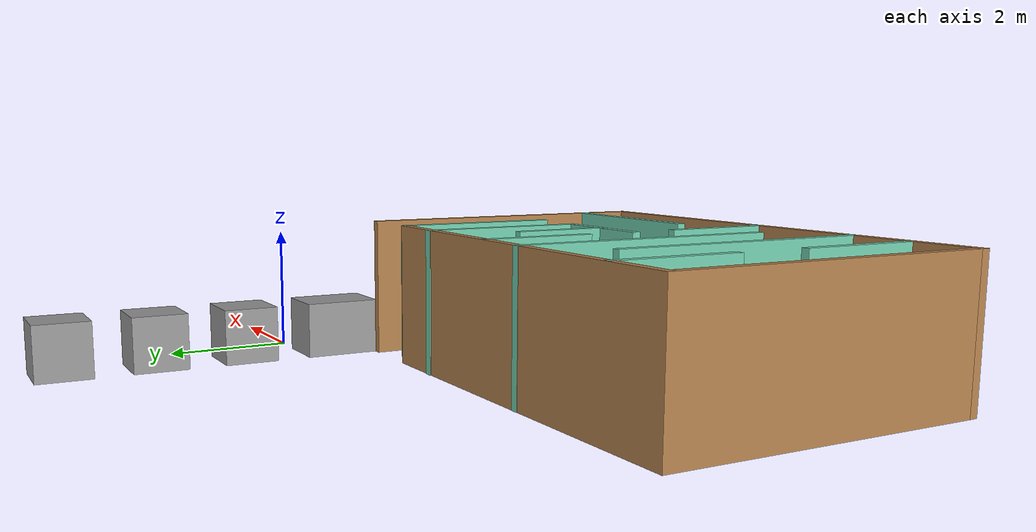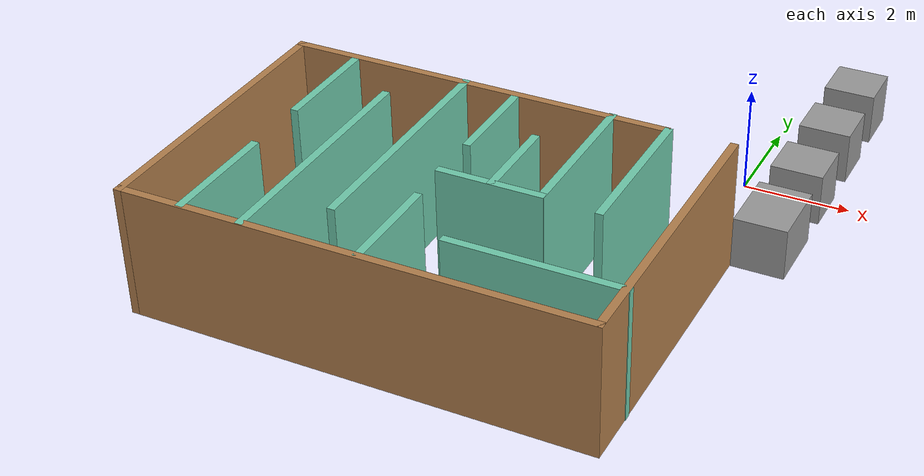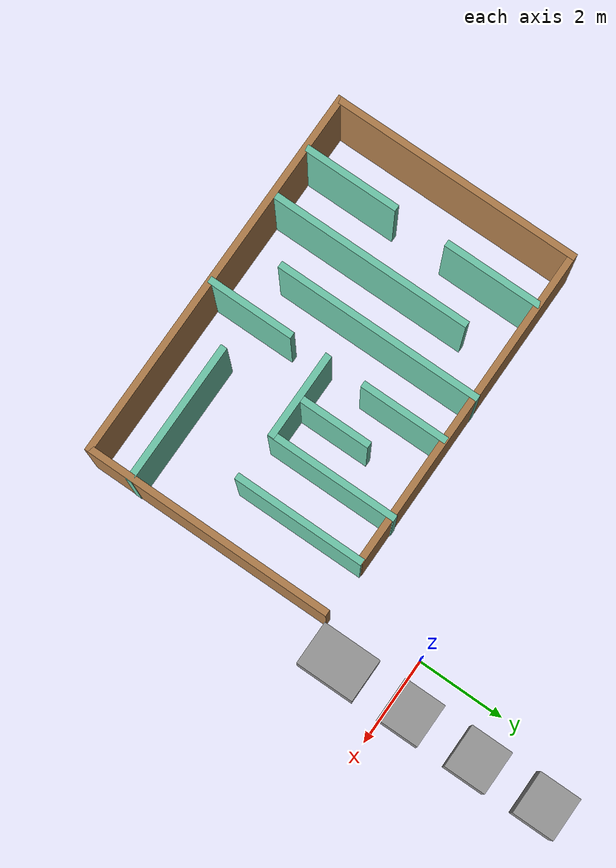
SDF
<?xml version='1.0'?>
<sdf version='1.6'>
  <model name='room_with_doors'>
    <link name='link_0'>
      <inertial>
        <mass>1.3523</mass>
        <inertia>
          <ixx>0.318777</ixx>
          <ixy>0</ixy>
          <ixz>0</ixz>
          <iyy>0.225384</iyy>
          <iyz>0</iyz>
          <izz>0.318777</izz>
        </inertia>
        <pose frame=''>0 0 0 0 -0 0</pose>
      </inertial>
      <pose frame=''>0.975123 -1.33272 0.1 0 -0 0</pose>
      <visual name='visual'>
        <pose frame=''>0 0 0 0 -0 0</pose>
        <geometry>
          <box>
            <size>1 1.35231 1</size>
          </box>
        </geometry>
        <material>
          <lighting>1</lighting>
          <script>
            <uri>file://media/materials/scripts/gazebo.material</uri>
            <name>Gazebo/Grey</name>
          </script>
        </material>
        <transparency>0</transparency>
        <cast_shadows>1</cast_shadows>
      </visual>
      <collision name='collision'>
        <laser_retro>0</laser_retro>
        <max_contacts>10</max_contacts>
        <pose frame=''>0 0 0 0 -0 0</pose>
        <geometry>
          <box>
            <size>1 1.35231 1</size>
          </box>
        </geometry>
        <surface>
          <friction>
            <ode>
              <mu>1</mu>
              <mu2>1</mu2>
              <fdir1>0 0 0</fdir1>
              <slip1>0</slip1>
              <slip2>0</slip2>
            </ode>
            <torsional>
              <coefficient>1</coefficient>
              <patch_radius>0</patch_radius>
              <surface_radius>0</surface_radius>
              <use_patch_radius>1</use_patch_radius>
              <ode>
                <slip>0</slip>
              </ode>
            </torsional>
          </friction>
          <bounce>
            <restitution_coefficient>0</restitution_coefficient>
            <threshold>1e+06</threshold>
          </bounce>
          <contact>
            <collide_without_contact>0</collide_without_contact>
            <collide_without_contact_bitmask>1</collide_without_contact_bitmask>
            <collide_bitmask>1</collide_bitmask>
            <ode>
              <soft_cfm>0</soft_cfm>
              <soft_erp>0.2</soft_erp>
              <kp>1e+13</kp>
              <kd>1</kd>
              <max_vel>0.01</max_vel>
              <min_depth>0</min_depth>
            </ode>
            <bullet>
              <split_impulse>1</split_impulse>
              <split_impulse_penetration_threshold>-0.01</split_impulse_penetration_threshold>
              <soft_cfm>0</soft_cfm>
              <soft_erp>0.2</soft_erp>
              <kp>1e+13</kp>
              <kd>1</kd>
            </bullet>
          </contact>
        </surface>
      </collision>
    </link>
    <link name='link_0_clone'>
      <inertial>
        <mass>0.973671</mass>
        <inertia>
          <ixx>0.158063</ixx>
          <ixy>0</ixy>
          <ixz>0</ixz>
          <iyy>0.162278</iyy>
          <iyz>0</iyz>
          <izz>0.158063</izz>
        </inertia>
        <pose frame=''>0 0 0 0 -0 0</pose>
      </inertial>
      <pose frame=''>0.974787 0.433874 0.1 0 -0 0</pose>
      <visual name='visual'>
        <pose frame=''>0 0 0 0 -0 0</pose>
        <geometry>
          <box>
            <size>1 0.973678 1</size>
          </box>
        </geometry>
        <material>
          <lighting>1</lighting>
          <script>
            <uri>file://media/materials/scripts/gazebo.material</uri>
            <name>Gazebo/Grey</name>
          </script>
          <shader type='pixel'/>
        </material>
        <transparency>0</transparency>
        <cast_shadows>1</cast_shadows>
      </visual>
      <collision name='collision'>
        <laser_retro>0</laser_retro>
        <max_contacts>10</max_contacts>
        <pose frame=''>0 0 0 0 -0 0</pose>
        <geometry>
          <box>
            <size>1 0.973678 1</size>
          </box>
        </geometry>
        <surface>
          <friction>
            <ode>
              <mu>1</mu>
              <mu2>1</mu2>
              <fdir1>0 0 0</fdir1>
              <slip1>0</slip1>
              <slip2>0</slip2>
            </ode>
            <torsional>
              <coefficient>1</coefficient>
              <patch_radius>0</patch_radius>
              <surface_radius>0</surface_radius>
              <use_patch_radius>1</use_patch_radius>
              <ode>
                <slip>0</slip>
              </ode>
            </torsional>
          </friction>
          <bounce>
            <restitution_coefficient>0</restitution_coefficient>
            <threshold>1e+06</threshold>
          </bounce>
          <contact>
            <collide_without_contact>0</collide_without_contact>
            <collide_without_contact_bitmask>1</collide_without_contact_bitmask>
            <collide_bitmask>1</collide_bitmask>
            <ode>
              <soft_cfm>0</soft_cfm>
              <soft_erp>0.2</soft_erp>
              <kp>1e+13</kp>
              <kd>1</kd>
              <max_vel>0.01</max_vel>
              <min_depth>0</min_depth>
            </ode>
            <bullet>
              <split_impulse>1</split_impulse>
              <split_impulse_penetration_threshold>-0.01</split_impulse_penetration_threshold>
              <soft_cfm>0</soft_cfm>
              <soft_erp>0.2</soft_erp>
              <kp>1e+13</kp>
              <kd>1</kd>
            </bullet>
          </contact>
        </surface>
      </collision>
    </link>
    <link name='link_0_clone_clone'>
      <inertial>
        <mass>0.973671</mass>
        <inertia>
          <ixx>0.158063</ixx>
          <ixy>0</ixy>
          <ixz>0</ixz>
          <iyy>0.162278</iyy>
          <iyz>0</iyz>
          <izz>0.158063</izz>
        </inertia>
        <pose frame=''>0 0 0 0 -0 0</pose>
      </inertial>
      <pose frame=''>0.982957 2.05971 0.1 0 -0 0</pose>
      <visual name='visual'>
        <pose frame=''>0 0 0 0 -0 0</pose>
        <geometry>
          <box>
            <size>1 0.973678 1</size>
          </box>
        </geometry>
        <material>
          <lighting>1</lighting>
          <script>
            <uri>file://media/materials/scripts/gazebo.material</uri>
            <name>Gazebo/Grey</name>
          </script>
          <shader type='pixel'/>
        </material>
        <transparency>0</transparency>
        <cast_shadows>1</cast_shadows>
      </visual>
      <collision name='collision'>
        <laser_retro>0</laser_retro>
        <max_contacts>10</max_contacts>
        <pose frame=''>0 0 0 0 -0 0</pose>
        <geometry>
          <box>
            <size>1 0.973678 1</size>
          </box>
        </geometry>
        <surface>
          <friction>
            <ode>
              <mu>1</mu>
              <mu2>1</mu2>
              <fdir1>0 0 0</fdir1>
              <slip1>0</slip1>
              <slip2>0</slip2>
            </ode>
            <torsional>
              <coefficient>1</coefficient>
              <patch_radius>0</patch_radius>
              <surface_radius>0</surface_radius>
              <use_patch_radius>1</use_patch_radius>
              <ode>
                <slip>0</slip>
              </ode>
            </torsional>
          </friction>
          <bounce>
            <restitution_coefficient>0</restitution_coefficient>
            <threshold>1e+06</threshold>
          </bounce>
          <contact>
            <collide_without_contact>0</collide_without_contact>
            <collide_without_contact_bitmask>1</collide_without_contact_bitmask>
            <collide_bitmask>1</collide_bitmask>
            <ode>
              <soft_cfm>0</soft_cfm>
              <soft_erp>0.2</soft_erp>
              <kp>1e+13</kp>
              <kd>1</kd>
              <max_vel>0.01</max_vel>
              <min_depth>0</min_depth>
            </ode>
            <bullet>
              <split_impulse>1</split_impulse>
              <split_impulse_penetration_threshold>-0.01</split_impulse_penetration_threshold>
              <soft_cfm>0</soft_cfm>
              <soft_erp>0.2</soft_erp>
              <kp>1e+13</kp>
              <kd>1</kd>
            </bullet>
          </contact>
        </surface>
      </collision>
    </link>
    <link name='link_0_clone_clone_clone'>
      <inertial>
        <mass>0.973671</mass>
        <inertia>
          <ixx>0.158063</ixx>
          <ixy>0</ixy>
          <ixz>0</ixz>
          <iyy>0.162278</iyy>
          <iyz>0</iyz>
          <izz>0.158063</izz>
        </inertia>
        <pose frame=''>0 0 0 0 -0 0</pose>
      </inertial>
      <pose frame=''>0.966793 3.68731 0.1 0 -0 0</pose>
      <visual name='visual'>
        <pose frame=''>0 0 0 0 -0 0</pose>
        <geometry>
          <box>
            <size>1 0.973678 1</size>
          </box>
        </geometry>
        <material>
          <lighting>1</lighting>
          <script>
            <uri>file://media/materials/scripts/gazebo.material</uri>
            <name>Gazebo/Grey</name>
          </script>
          <shader type='pixel'/>
        </material>
        <transparency>0</transparency>
        <cast_shadows>1</cast_shadows>
      </visual>
      <collision name='collision'>
        <laser_retro>0</laser_retro>
        <max_contacts>10</max_contacts>
        <pose frame=''>0 0 0 0 -0 0</pose>
        <geometry>
          <box>
            <size>1 0.973678 1</size>
          </box>
        </geometry>
        <surface>
          <friction>
            <ode>
              <mu>1</mu>
              <mu2>1</mu2>
              <fdir1>0 0 0</fdir1>
              <slip1>0</slip1>
              <slip2>0</slip2>
            </ode>
            <torsional>
              <coefficient>1</coefficient>
              <patch_radius>0</patch_radius>
              <surface_radius>0</surface_radius>
              <use_patch_radius>1</use_patch_radius>
              <ode>
                <slip>0</slip>
              </ode>
            </torsional>
          </friction>
          <bounce>
            <restitution_coefficient>0</restitution_coefficient>
            <threshold>1e+06</threshold>
          </bounce>
          <contact>
            <collide_without_contact>0</collide_without_contact>
            <collide_without_contact_bitmask>1</collide_without_contact_bitmask>
            <collide_bitmask>1</collide_bitmask>
            <ode>
              <soft_cfm>0</soft_cfm>
              <soft_erp>0.2</soft_erp>
              <kp>1e+13</kp>
              <kd>1</kd>
              <max_vel>0.01</max_vel>
              <min_depth>0</min_depth>
            </ode>
            <bullet>
              <split_impulse>1</split_impulse>
              <split_impulse_penetration_threshold>-0.01</split_impulse_penetration_threshold>
              <soft_cfm>0</soft_cfm>
              <soft_erp>0.2</soft_erp>
              <kp>1e+13</kp>
              <kd>1</kd>
            </bullet>
          </contact>
        </surface>
      </collision>
    </link>
    <model name='Small_Assignmnet_room'>
      <pose frame=''>-3.89966 -4.84817 -0.4 0 -0 0</pose>
      <link name='Wall_11'>
        <collision name='Wall_11_Collision'>
          <geometry>
            <box>
              <size>2.25 0.15 2.5</size>
            </box>
          </geometry>
          <pose frame=''>0 0 1.25 0 -0 0</pose>
        </collision>
        <visual name='Wall_11_Visual'>
          <pose frame=''>0 0 1.25 0 -0 0</pose>
          <geometry>
            <box>
              <size>2.25 0.15 2.5</size>
            </box>
          </geometry>
          <material>
            <script>
              <uri>file://media/materials/scripts/gazebo.material</uri>
              <name>Gazebo/Grey</name>
            </script>
            <ambient>0.435294 0.796078 0.67451 1</ambient>
          </material>
          <meta>
            <layer>0</layer>
          </meta>
        </visual>
        <pose frame=''>-3.11405 -1.73213 0 0 -0 1.5708</pose>
      </link>
      <link name='Wall_13'>
        <collision name='Wall_13_Collision'>
          <geometry>
            <box>
              <size>4.75 0.15 2.5</size>
            </box>
          </geometry>
          <pose frame=''>0 0 1.25 0 -0 0</pose>
        </collision>
        <visual name='Wall_13_Visual'>
          <pose frame=''>0 0 1.25 0 -0 0</pose>
          <geometry>
            <box>
              <size>4.75 0.15 2.5</size>
            </box>
          </geometry>
          <material>
            <script>
              <uri>file://media/materials/scripts/gazebo.material</uri>
              <name>Gazebo/Grey</name>
            </script>
            <ambient>0.435294 0.796078 0.67451 1</ambient>
          </material>
          <meta>
            <layer>0</layer>
          </meta>
        </visual>
        <pose frame=''>-1.96187 -0.500036 0 0 -0 1.5708</pose>
      </link>
      <link name='Wall_16'>
        <collision name='Wall_16_Collision'>
          <geometry>
            <box>
              <size>4.75 0.15 2.5</size>
            </box>
          </geometry>
          <pose frame=''>0 0 1.25 0 -0 0</pose>
        </collision>
        <visual name='Wall_16_Visual'>
          <pose frame=''>0 0 1.25 0 -0 0</pose>
          <geometry>
            <box>
              <size>4.75 0.15 2.5</size>
            </box>
          </geometry>
          <material>
            <script>
              <uri>file://media/materials/scripts/gazebo.material</uri>
              <name>Gazebo/Grey</name>
            </script>
            <ambient>0.435294 0.796078 0.67451 1</ambient>
          </material>
          <meta>
            <layer>0</layer>
          </meta>
        </visual>
        <pose frame=''>-0.859071 0.504207 0 0 -0 -1.5708</pose>
      </link>
      <link name='Wall_18'>
        <collision name='Wall_18_Collision'>
          <geometry>
            <box>
              <size>2 0.15 2.5</size>
            </box>
          </geometry>
          <pose frame=''>0 0 1.25 0 -0 0</pose>
        </collision>
        <visual name='Wall_18_Visual'>
          <pose frame=''>0 0 1.25 0 -0 0</pose>
          <geometry>
            <box>
              <size>2 0.15 2.5</size>
            </box>
          </geometry>
          <material>
            <script>
              <uri>file://media/materials/scripts/gazebo.material</uri>
              <name>Gazebo/Grey</name>
            </script>
            <ambient>0.435294 0.796078 0.67451 1</ambient>
          </material>
          <meta>
            <layer>0</layer>
          </meta>
        </visual>
        <pose frame=''>0.187717 1.84431 0 0 -0 -1.5708</pose>
      </link>
      <link name='Wall_2'>
        <collision name='Wall_2_Collision'>
          <geometry>
            <box>
              <size>8.75 0.15 2.5</size>
            </box>
          </geometry>
          <pose frame=''>0 0 1.25 0 -0 0</pose>
        </collision>
        <visual name='Wall_2_Visual'>
          <pose frame=''>0 0 1.25 0 -0 0</pose>
          <geometry>
            <box>
              <size>8.75 0.15 2.5</size>
            </box>
          </geometry>
          <material>
            <script>
              <uri>file://media/materials/scripts/gazebo.material</uri>
              <name>Gazebo/Wood</name>
            </script>
            <ambient>1 1 1 1</ambient>
          </material>
          <meta>
            <layer>0</layer>
          </meta>
        </visual>
        <pose frame=''>-0.005083 -2.81625 0 0 -0 0</pose>
      </link>
      <link name='Wall_20'>
        <collision name='Wall_20_Collision'>
          <geometry>
            <box>
              <size>2 0.15 2.5</size>
            </box>
          </geometry>
          <pose frame=''>0 0 1.25 0 -0 0</pose>
        </collision>
        <visual name='Wall_20_Visual'>
          <pose frame=''>0 0 1.25 0 -0 0</pose>
          <geometry>
            <box>
              <size>2 0.15 2.5</size>
            </box>
          </geometry>
          <material>
            <script>
              <uri>file://media/materials/scripts/gazebo.material</uri>
              <name>Gazebo/Grey</name>
            </script>
            <ambient>0.435294 0.796078 0.67451 1</ambient>
          </material>
          <meta>
            <layer>0</layer>
          </meta>
        </visual>
        <pose frame=''>0.187717 -1.84203 0 0 -0 1.5708</pose>
      </link>
      <link name='Wall_22'>
        <collision name='Wall_22_Collision'>
          <geometry>
            <box>
              <size>2 0.15 2.5</size>
            </box>
          </geometry>
          <pose frame=''>0 0 1.25 0 -0 0</pose>
        </collision>
        <visual name='Wall_22_Visual'>
          <pose frame=''>0 0 1.25 0 -0 0</pose>
          <geometry>
            <box>
              <size>2 0.15 2.5</size>
            </box>
          </geometry>
          <material>
            <script>
              <uri>file://media/materials/scripts/gazebo.material</uri>
              <name>Gazebo/Grey</name>
            </script>
            <ambient>0.435294 0.796078 0.67451 1</ambient>
          </material>
          <meta>
            <layer>0</layer>
          </meta>
        </visual>
        <pose frame=''>1.08946 -0.033751 0 0 -0 0</pose>
      </link>
      <link name='Wall_23'>
        <collision name='Wall_23_Collision'>
          <geometry>
            <box>
              <size>3 0.15 2.5</size>
            </box>
          </geometry>
          <pose frame=''>0 0 1.25 0 -0 0</pose>
        </collision>
        <visual name='Wall_23_Visual'>
          <pose frame=''>0 0 1.25 0 -0 0</pose>
          <geometry>
            <box>
              <size>3 0.15 2.5</size>
            </box>
          </geometry>
          <material>
            <script>
              <uri>file://media/materials/scripts/gazebo.material</uri>
              <name>Gazebo/Grey</name>
            </script>
            <ambient>0.435294 0.796078 0.67451 1</ambient>
          </material>
          <meta>
            <layer>0</layer>
          </meta>
        </visual>
        <pose frame=''>2.02609 1.39125 0 0 -0 1.5708</pose>
      </link>
      <link name='Wall_25'>
        <collision name='Wall_25_Collision'>
          <geometry>
            <box>
              <size>1.75 0.15 2.5</size>
            </box>
          </geometry>
          <pose frame=''>0 0 1.25 0 -0 0</pose>
        </collision>
        <visual name='Wall_25_Visual'>
          <pose frame=''>0 0 1.25 0 -0 0</pose>
          <geometry>
            <box>
              <size>1.75 0.15 2.5</size>
            </box>
          </geometry>
          <material>
            <script>
              <uri>file://media/materials/scripts/gazebo.material</uri>
              <name>Gazebo/Grey</name>
            </script>
            <ambient>0.435294 0.796078 0.67451 1</ambient>
          </material>
          <meta>
            <layer>0</layer>
          </meta>
        </visual>
        <pose frame=''>1.1182 0.77788 0 0 -0 1.5708</pose>
      </link>
      <link name='Wall_27'>
        <collision name='Wall_27_Collision'>
          <geometry>
            <box>
              <size>3 0.15 2.5</size>
            </box>
          </geometry>
          <pose frame=''>0 0 1.25 0 -0 0</pose>
        </collision>
        <visual name='Wall_27_Visual'>
          <pose frame=''>0 0 1.25 0 -0 0</pose>
          <geometry>
            <box>
              <size>3 0.15 2.5</size>
            </box>
          </geometry>
          <material>
            <script>
              <uri>file://media/materials/scripts/gazebo.material</uri>
              <name>Gazebo/Grey</name>
            </script>
            <ambient>0.435294 0.796078 0.67451 1</ambient>
          </material>
          <meta>
            <layer>0</layer>
          </meta>
        </visual>
        <pose frame=''>3.09546 1.35594 0 0 -0 -1.5708</pose>
      </link>
      <link name='Wall_29'>
        <collision name='Wall_29_Collision'>
          <geometry>
            <box>
              <size>5.75 0.15 2.5</size>
            </box>
          </geometry>
          <pose frame=''>0 0 1.25 0 -0 0</pose>
        </collision>
        <visual name='Wall_29_Visual'>
          <pose frame=''>0 0 1.25 0 -0 0</pose>
          <geometry>
            <box>
              <size>5.75 0.15 2.5</size>
            </box>
          </geometry>
          <material>
            <script>
              <uri>file://media/materials/scripts/gazebo.material</uri>
              <name>Gazebo/Wood</name>
            </script>
            <ambient>1 1 1 1</ambient>
          </material>
          <meta>
            <layer>0</layer>
          </meta>
        </visual>
        <pose frame=''>4.29492 -0.016249 0 0 -0 1.5708</pose>
      </link>
      <link name='Wall_31'>
        <collision name='Wall_31_Collision'>
          <geometry>
            <box>
              <size>3.25 0.15 2.5</size>
            </box>
          </geometry>
          <pose frame=''>0 0 1.25 0 -0 0</pose>
        </collision>
        <visual name='Wall_31_Visual'>
          <pose frame=''>0 0 1.25 0 -0 0</pose>
          <geometry>
            <box>
              <size>3.25 0.15 2.5</size>
            </box>
          </geometry>
          <material>
            <script>
              <uri>file://media/materials/scripts/gazebo.material</uri>
              <name>Gazebo/Grey</name>
            </script>
            <ambient>0.435294 0.796078 0.67451 1</ambient>
          </material>
          <meta>
            <layer>0</layer>
          </meta>
        </visual>
        <pose frame=''>2.75508 -1.82492 0 0 -0 3.14159</pose>
      </link>
      <link name='Wall_5'>
        <collision name='Wall_5_Collision'>
          <geometry>
            <box>
              <size>5.76323 0.15 2.5</size>
            </box>
          </geometry>
          <pose frame=''>0 0 1.25 0 -0 0</pose>
        </collision>
        <visual name='Wall_5_Visual'>
          <pose frame=''>0 0 1.25 0 -0 0</pose>
          <geometry>
            <box>
              <size>5.76323 0.15 2.5</size>
            </box>
          </geometry>
          <material>
            <script>
              <uri>file://media/materials/scripts/gazebo.material</uri>
              <name>Gazebo/Wood</name>
            </script>
            <ambient>1 1 1 1</ambient>
          </material>
          <meta>
            <layer>0</layer>
          </meta>
        </visual>
        <pose frame=''>-4.30508 -0.009636 0 0 -0 1.5708</pose>
      </link>
      <link name='Wall_7'>
        <collision name='Wall_7_Collision'>
          <geometry>
            <box>
              <size>7.5 0.15 2.5</size>
            </box>
          </geometry>
          <pose frame=''>0 0 1.25 0 -0 0</pose>
        </collision>
        <visual name='Wall_7_Visual'>
          <pose frame=''>0 0 1.25 0 -0 0</pose>
          <geometry>
            <box>
              <size>7.5 0.15 2.5</size>
            </box>
          </geometry>
          <material>
            <script>
              <uri>file://media/materials/scripts/gazebo.material</uri>
              <name>Gazebo/Wood</name>
            </script>
            <ambient>1 1 1 1</ambient>
          </material>
          <meta>
            <layer>0</layer>
          </meta>
        </visual>
        <pose frame=''>-0.630083 2.79698 0 0 -0 0</pose>
      </link>
      <link name='Wall_9'>
        <collision name='Wall_9_Collision'>
          <geometry>
            <box>
              <size>2.25 0.15 2.5</size>
            </box>
          </geometry>
          <pose frame=''>0 0 1.25 0 -0 0</pose>
        </collision>
        <visual name='Wall_9_Visual'>
          <pose frame=''>0 0 1.25 0 -0 0</pose>
          <geometry>
            <box>
              <size>2.25 0.15 2.5</size>
            </box>
          </geometry>
          <material>
            <script>
              <uri>file://media/materials/scripts/gazebo.material</uri>
              <name>Gazebo/Grey</name>
            </script>
            <ambient>0.435294 0.796078 0.67451 1</ambient>
          </material>
          <meta>
            <layer>0</layer>
          </meta>
        </visual>
        <pose frame=''>-3.09884 1.71906 0 0 -0 -1.5708</pose>
      </link>
      <static>1</static>
    </model>
    <static>0</static>
    <allow_auto_disable>1</allow_auto_disable>
  </model>
</sdf>
